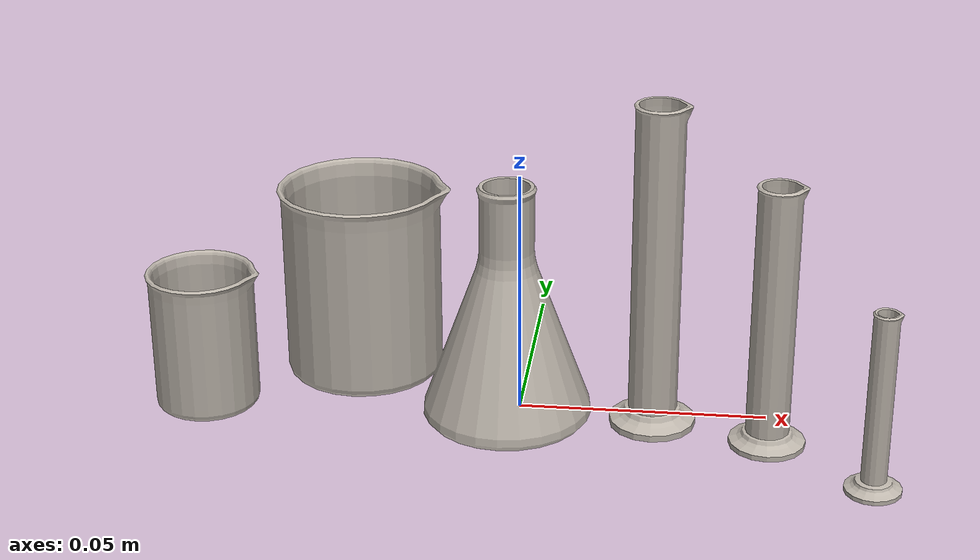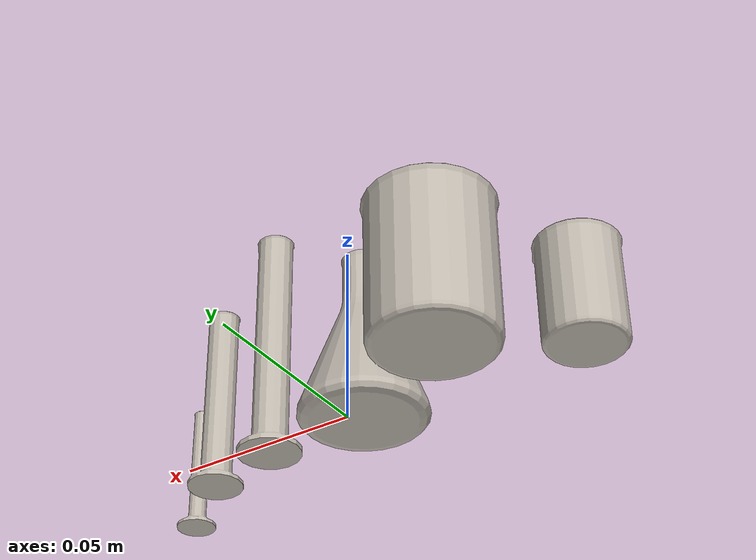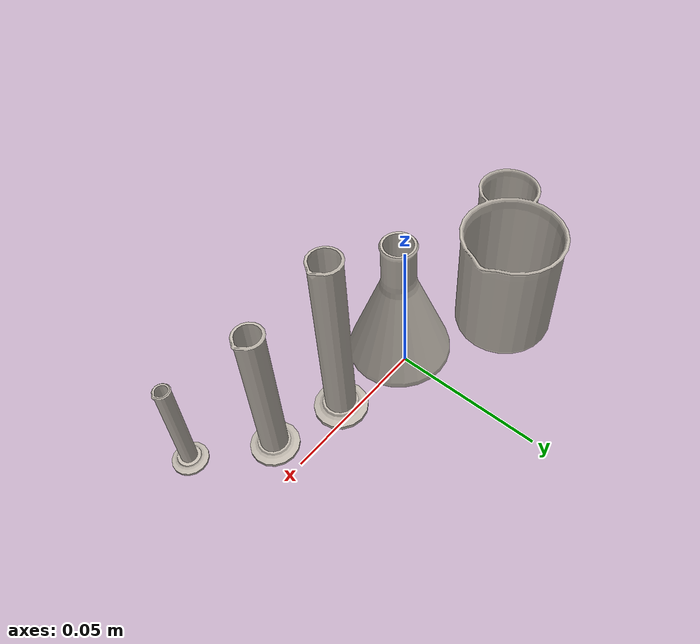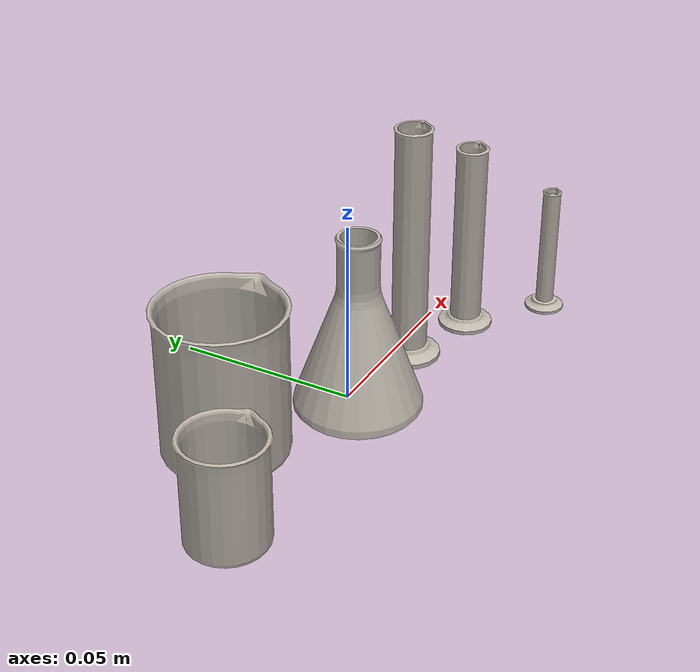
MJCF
<?xml version="1.0" ?>
<mujoco model="chemistry_glassware">
  <asset>
    <texture type="2d" name="material_0" file="material_0.png"/>
    <material name="material_0" texture="material_0" specular="0.4000000000000001" shininess="0.001"/>
    <mesh file="chemistry_glassware.obj" scale="0.0032567045134247086 0.0032567045134247086 0.0032567045134247086"/>
    <mesh file="chemistry_glassware/chemistry_glassware_collision_0.obj" scale="0.0032567045134247086 0.0032567045134247086 0.0032567045134247086"/>
    <mesh file="chemistry_glassware/chemistry_glassware_collision_1.obj" scale="0.0032567045134247086 0.0032567045134247086 0.0032567045134247086"/>
    <mesh file="chemistry_glassware/chemistry_glassware_collision_2.obj" scale="0.0032567045134247086 0.0032567045134247086 0.0032567045134247086"/>
    <mesh file="chemistry_glassware/chemistry_glassware_collision_3.obj" scale="0.0032567045134247086 0.0032567045134247086 0.0032567045134247086"/>
    <mesh file="chemistry_glassware/chemistry_glassware_collision_4.obj" scale="0.0032567045134247086 0.0032567045134247086 0.0032567045134247086"/>
    <mesh file="chemistry_glassware/chemistry_glassware_collision_5.obj" scale="0.0032567045134247086 0.0032567045134247086 0.0032567045134247086"/>
    <mesh file="chemistry_glassware/chemistry_glassware_collision_6.obj" scale="0.0032567045134247086 0.0032567045134247086 0.0032567045134247086"/>
    <mesh file="chemistry_glassware/chemistry_glassware_collision_7.obj" scale="0.0032567045134247086 0.0032567045134247086 0.0032567045134247086"/>
    <mesh file="chemistry_glassware/chemistry_glassware_collision_8.obj" scale="0.0032567045134247086 0.0032567045134247086 0.0032567045134247086"/>
    <mesh file="chemistry_glassware/chemistry_glassware_collision_9.obj" scale="0.0032567045134247086 0.0032567045134247086 0.0032567045134247086"/>
    <mesh file="chemistry_glassware/chemistry_glassware_collision_10.obj" scale="0.0032567045134247086 0.0032567045134247086 0.0032567045134247086"/>
    <mesh file="chemistry_glassware/chemistry_glassware_collision_11.obj" scale="0.0032567045134247086 0.0032567045134247086 0.0032567045134247086"/>
    <mesh file="chemistry_glassware/chemistry_glassware_collision_12.obj" scale="0.0032567045134247086 0.0032567045134247086 0.0032567045134247086"/>
    <mesh file="chemistry_glassware/chemistry_glassware_collision_13.obj" scale="0.0032567045134247086 0.0032567045134247086 0.0032567045134247086"/>
    <mesh file="chemistry_glassware/chemistry_glassware_collision_14.obj" scale="0.0032567045134247086 0.0032567045134247086 0.0032567045134247086"/>
    <mesh file="chemistry_glassware/chemistry_glassware_collision_15.obj" scale="0.0032567045134247086 0.0032567045134247086 0.0032567045134247086"/>
    <mesh file="chemistry_glassware/chemistry_glassware_collision_16.obj" scale="0.0032567045134247086 0.0032567045134247086 0.0032567045134247086"/>
    <mesh file="chemistry_glassware/chemistry_glassware_collision_17.obj" scale="0.0032567045134247086 0.0032567045134247086 0.0032567045134247086"/>
    <mesh file="chemistry_glassware/chemistry_glassware_collision_18.obj" scale="0.0032567045134247086 0.0032567045134247086 0.0032567045134247086"/>
    <mesh file="chemistry_glassware/chemistry_glassware_collision_19.obj" scale="0.0032567045134247086 0.0032567045134247086 0.0032567045134247086"/>
    <mesh file="chemistry_glassware/chemistry_glassware_collision_20.obj" scale="0.0032567045134247086 0.0032567045134247086 0.0032567045134247086"/>
    <mesh file="chemistry_glassware/chemistry_glassware_collision_21.obj" scale="0.0032567045134247086 0.0032567045134247086 0.0032567045134247086"/>
    <mesh file="chemistry_glassware/chemistry_glassware_collision_22.obj" scale="0.0032567045134247086 0.0032567045134247086 0.0032567045134247086"/>
    <mesh file="chemistry_glassware/chemistry_glassware_collision_23.obj" scale="0.0032567045134247086 0.0032567045134247086 0.0032567045134247086"/>
    <mesh file="chemistry_glassware/chemistry_glassware_collision_24.obj" scale="0.0032567045134247086 0.0032567045134247086 0.0032567045134247086"/>
    <mesh file="chemistry_glassware/chemistry_glassware_collision_25.obj" scale="0.0032567045134247086 0.0032567045134247086 0.0032567045134247086"/>
    <mesh file="chemistry_glassware/chemistry_glassware_collision_26.obj" scale="0.0032567045134247086 0.0032567045134247086 0.0032567045134247086"/>
    <mesh file="chemistry_glassware/chemistry_glassware_collision_27.obj" scale="0.0032567045134247086 0.0032567045134247086 0.0032567045134247086"/>
    <mesh file="chemistry_glassware/chemistry_glassware_collision_28.obj" scale="0.0032567045134247086 0.0032567045134247086 0.0032567045134247086"/>
    <mesh file="chemistry_glassware/chemistry_glassware_collision_29.obj" scale="0.0032567045134247086 0.0032567045134247086 0.0032567045134247086"/>
    <mesh file="chemistry_glassware/chemistry_glassware_collision_30.obj" scale="0.0032567045134247086 0.0032567045134247086 0.0032567045134247086"/>
    <mesh file="chemistry_glassware/chemistry_glassware_collision_31.obj" scale="0.0032567045134247086 0.0032567045134247086 0.0032567045134247086"/>
    <mesh file="chemistry_glassware/chemistry_glassware_collision_32.obj" scale="0.0032567045134247086 0.0032567045134247086 0.0032567045134247086"/>
    <mesh file="chemistry_glassware/chemistry_glassware_collision_33.obj" scale="0.0032567045134247086 0.0032567045134247086 0.0032567045134247086"/>
    <mesh file="chemistry_glassware/chemistry_glassware_collision_34.obj" scale="0.0032567045134247086 0.0032567045134247086 0.0032567045134247086"/>
    <mesh file="chemistry_glassware/chemistry_glassware_collision_35.obj" scale="0.0032567045134247086 0.0032567045134247086 0.0032567045134247086"/>
  </asset>
  <worldbody>
    <body name="chemistry_glassware">
      <inertial pos="0 0 0.040091" mass="0.02" diaginertia="0.0008 0.0008 0.0005"/>
      <geom material="material_0" mesh="chemistry_glassware" class="visual"/>
      <geom mesh="chemistry_glassware_collision_0" rgba="0.7376308635389258 0.25216379421395196 0.006961247327146758 1" class="collision"/>
      <geom mesh="chemistry_glassware_collision_1" rgba="0.912725854450403 0.6834820110152485 0.7083673733877279 1" class="collision"/>
      <geom mesh="chemistry_glassware_collision_2" rgba="0.06221804127291508 0.7271317474495693 0.3113790671992901 1" class="collision"/>
      <geom mesh="chemistry_glassware_collision_3" rgba="0.6762759279881364 0.008165399701560716 0.48735545266933034 1" class="collision"/>
      <geom mesh="chemistry_glassware_collision_4" rgba="0.563789834704285 0.5552587223193174 0.6467285226674243 1" class="collision"/>
      <geom mesh="chemistry_glassware_collision_5" rgba="0.060807274510883746 0.7309753909261519 0.27205568469264163 1" class="collision"/>
      <geom mesh="chemistry_glassware_collision_6" rgba="0.3146763704911859 0.9179765919219084 0.049322768965491925 1" class="collision"/>
      <geom mesh="chemistry_glassware_collision_7" rgba="0.075949067649005 0.44645755097880535 0.4648030566716065 1" class="collision"/>
      <geom mesh="chemistry_glassware_collision_8" rgba="0.4409311702533255 0.32825894514772946 0.6416145772206844 1" class="collision"/>
      <geom mesh="chemistry_glassware_collision_9" rgba="0.3521374829213255 0.7669833249889019 0.8773074935228687 1" class="collision"/>
      <geom mesh="chemistry_glassware_collision_10" rgba="0.6035268671192577 0.1985265259300848 0.6245671430860982 1" class="collision"/>
      <geom mesh="chemistry_glassware_collision_11" rgba="0.4157450777825411 0.21759918473802753 0.20774428623102892 1" class="collision"/>
      <geom mesh="chemistry_glassware_collision_12" rgba="0.9551646591707834 0.31259244426737054 0.09188218675241178 1" class="collision"/>
      <geom mesh="chemistry_glassware_collision_13" rgba="0.12005630216740615 0.5427985600120715 0.9055437595534451 1" class="collision"/>
      <geom mesh="chemistry_glassware_collision_14" rgba="0.22610317353049458 0.8263077298906468 0.7344502671195264 1" class="collision"/>
      <geom mesh="chemistry_glassware_collision_15" rgba="0.5247748718559085 0.8476828355183779 0.30410535363414315 1" class="collision"/>
      <geom mesh="chemistry_glassware_collision_16" rgba="0.6583049323614086 0.978577527990191 0.37176977135446987 1" class="collision"/>
      <geom mesh="chemistry_glassware_collision_17" rgba="0.5477387828426117 0.4889746624776409 0.38083669370534057 1" class="collision"/>
      <geom mesh="chemistry_glassware_collision_18" rgba="0.5815108640731016 0.0452751812947102 0.5738900133444794 1" class="collision"/>
      <geom mesh="chemistry_glassware_collision_19" rgba="0.36542360924918094 0.8619556486961343 0.980958067228432 1" class="collision"/>
      <geom mesh="chemistry_glassware_collision_20" rgba="0.8086472962913204 0.5556960956685713 0.0347512058761511 1" class="collision"/>
      <geom mesh="chemistry_glassware_collision_21" rgba="0.20509181454294245 0.42715233124973073 0.4648915575793281 1" class="collision"/>
      <geom mesh="chemistry_glassware_collision_22" rgba="0.8061726078123472 0.17866971440639368 0.6512949006800512 1" class="collision"/>
      <geom mesh="chemistry_glassware_collision_23" rgba="0.471302605325855 0.2958808392675455 0.06971549212385708 1" class="collision"/>
      <geom mesh="chemistry_glassware_collision_24" rgba="0.960916529369581 0.48346233928292326 0.7432938251286957 1" class="collision"/>
      <geom mesh="chemistry_glassware_collision_25" rgba="0.04187681309580915 0.537431743836925 0.7759740017297605 1" class="collision"/>
      <geom mesh="chemistry_glassware_collision_26" rgba="0.5819409875629962 0.8464094926450592 0.7572462250083529 1" class="collision"/>
      <geom mesh="chemistry_glassware_collision_27" rgba="0.6683602352717279 0.7377950293340865 0.27871328426278963 1" class="collision"/>
      <geom mesh="chemistry_glassware_collision_28" rgba="0.7265492109274496 0.27942586345209863 0.26250700549392314 1" class="collision"/>
      <geom mesh="chemistry_glassware_collision_29" rgba="0.6711395056451058 0.3167401844142955 0.9091036666049633 1" class="collision"/>
      <geom mesh="chemistry_glassware_collision_30" rgba="0.6302112095192068 0.38564403148366677 0.6240978382650614 1" class="collision"/>
      <geom mesh="chemistry_glassware_collision_31" rgba="0.35442500274589595 0.9566120609094649 0.44913950407935044 1" class="collision"/>
      <geom mesh="chemistry_glassware_collision_32" rgba="0.13403751016971388 0.5653624222068014 0.5498129500307912 1" class="collision"/>
      <geom mesh="chemistry_glassware_collision_33" rgba="0.9402046846189865 0.064132931849754 0.4622436206783379 1" class="collision"/>
      <geom mesh="chemistry_glassware_collision_34" rgba="0.0567693684714613 0.820574101887462 0.21870239033778816 1" class="collision"/>
      <geom mesh="chemistry_glassware_collision_35" rgba="0.3424872357193781 0.48449671529465677 0.6144214928599281 1" class="collision"/>
      <site class="grasppoint" pos="0.0327 -0.0045 0.040055"/>
      <site class="grasppoint" pos="0.0219 -0.0042 0.039755"/>
      <site class="grasppoint" pos="0.0271 0.0010 0.039755"/>
    </body>
  </worldbody>
  <compiler boundmass="0.015" boundinertia="1e-05" angle="radian"/>
  <default>
    <default class="visual">
      <geom group="2" type="mesh" contype="0" conaffinity="0" density="50"/>
    </default>
    <default class="collision">
      <geom group="3" type="mesh" density="50" friction="1.5 0.1 0.1" solimp="0.9 0.95 0.001" solref="0.02 1"/>
    </default>
    <default class="grasppoint">
      <site type="sphere" size="0.005" group="4" rgba="0 0 1 1"/>
    </default>
  </default>
</mujoco>
